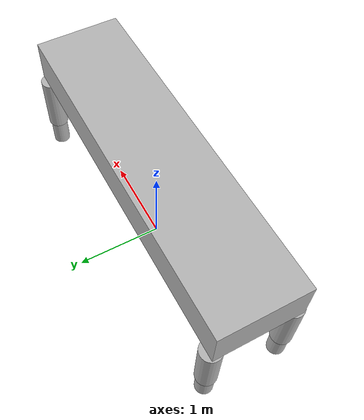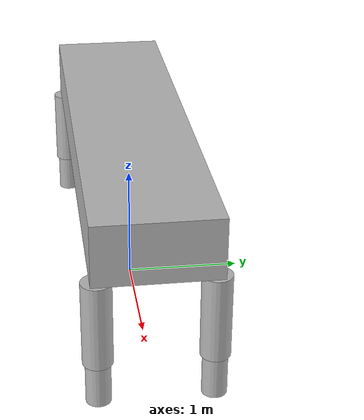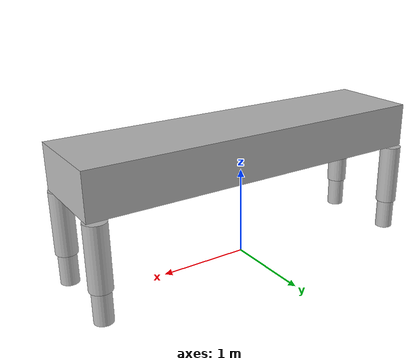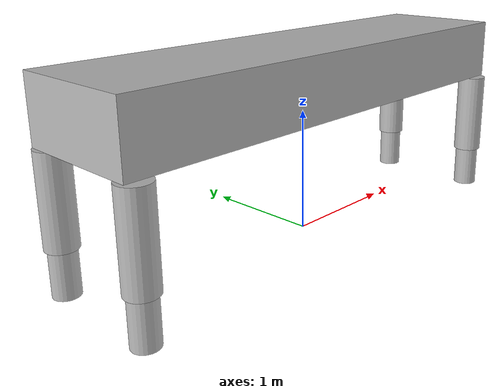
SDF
<?xml version='1.0'?>
<sdf version='1.4'>
  <model name="lessjoints">
    <static>false</static>
    <self_collide>1</self_collide>
      <link name='body'>
        <pose>0 0 1.31 0 0 0</pose>
        <inertial>
          <mass>20</mass>
        </inertial>
        <collision name='collision'>
          <pose frame=''>0 0 0 0 0 0</pose>
          <geometry>
            <box>
              <size>4 1 .5</size>
            </box>
          </geometry>
        </collision>
          <visual name='visual'>
          <pose>0 0 0 0 0 0</pose>
          <geometry>
            <box>
              <size>4 1 .5</size>
            </box>
          </geometry>
        </visual>
      </link>

      <!-- front left leg -->
      <include>
        <uri>model://NewLeg</uri>
        <pose> 1.9 .45 0 0 0 0</pose>
        <name>fl_leg</name>
      </include>
      <joint name="body_to_fl_leg" type="revolute">
        <child>fl_leg::r_thigh_lift</child>
        <parent>body</parent>
        <pose frame=''>0 0 0.35 0 0 0</pose>
        <axis>
          <xyz>0 1 0</xyz>
          <limit>
          <lower>-1.57</lower>
          <upper>1.57</upper>
        </limit>
        </axis>
      </joint>

      <!-- front right leg -->
      <include>
        <uri>model://NewLeg</uri>
        <pose> 1.9 -.45 0 0 0 0</pose>
        <name>fr_leg</name>
      </include>
      <joint name="body_to_fr_leg" type="revolute">
        <child>fr_leg::r_thigh_lift</child>
        <parent>body</parent>
        <pose frame=''>0 0 0.35 0 0 0</pose>
        <axis>
          <xyz>0 1 0</xyz>
          <dynamics>
          </dynamics>
          <limit>
          <lower>-1.57</lower>
          <upper>1.57</upper>
        </limit>
        </axis>
      </joint>

      <!-- middle left leg -->

      <!-- middle right leg -->

      <!-- rear left leg -->
      <include>
        <uri>model://NewLeg</uri>
        <pose>-1.9 0.45 0 0 0 0</pose>
        <name>rl_leg</name>
      </include>
      <joint name="body_to_rl_leg" type="revolute">
        <child>rl_leg::r_thigh_lift</child>
        <parent>body</parent>
        <pose frame=''>0 0 0.35 0 0 0</pose>
        <axis>
          <xyz>0 1 0</xyz>
          <limit>
          <lower>-1.57</lower>
          <upper>1.57</upper>
        </limit>
        </axis>
      </joint>

      <!-- rear right leg -->
      <include>
        <uri>model://NewLeg</uri>
        <pose>-1.9 -0.45 0 0 0 0</pose>
        <name>rr_leg</name>
      </include>
      <joint name="body_to_rr_leg" type="revolute">
        <child>rr_leg::r_thigh_lift</child>
        <parent>body</parent>
        <pose frame=''>0 0 0.35 0 0 0</pose>
        <axis>
          <xyz>0 1 0</xyz>
          <limit>
          <lower>-1.57</lower>
          <upper>1.57</upper>
        </limit>
        </axis>
      </joint>
      <self_collide>1</self_collide>
    </model>
</sdf>

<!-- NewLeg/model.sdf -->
<sdf version='1.6'>
  <model name='leg1'>
    <link name='r_calf'>
      <pose frame=''>0 0 0.2 0 0 0</pose>
      <inertial>
        <mass>.25</mass>
      </inertial>
      <gravity>1</gravity>
      <kinematic>0</kinematic>

      <self_collide>1</self_collide>
      <visual name='r_calf_geom_visual'>
        <pose frame=''>0 0 0 0 0 0</pose>
        <geometry>
          <cylinder>
            <radius>0.1</radius>
            <length>0.4 </length>
          </cylinder>
        </geometry>
      </visual>
      <collision name='r_calf_geom'>
        <pose frame=''>0 0 0 0 0 0</pose>
        <geometry>
          <cylinder>
            <radius>0.1</radius>
            <length>0.4</length>
          </cylinder>
        </geometry>
      </collision>
    </link>

    <link name='r_thigh_lift'>
      <pose frame=''>0 0 0.7 0 0 0</pose>
      <inertial>
        <mass>.54</mass>
      </inertial>
      <gravity>1</gravity>
      <kinematic>0</kinematic>

      <self_collide>1</self_collide>

      <visual name='r_thigh_lift_geom_visual'>
        <pose frame=''>0 0 0 0 -0 0</pose>
        <geometry>
          <cylinder>
            <radius>0.12</radius>
            <length>0.7</length>
          </cylinder>
        </geometry>
      </visual>
      <collision name='r_thigh_lift_geom'>
        <pose frame=''>0 0 0 0 0 0</pose>
        <geometry>
          <cylinder>
            <radius>0.12</radius>
            <length>0.7</length>
          </cylinder>
        </geometry>
      </collision>
    </link>

    <joint name='r_calf_joint' type='revolute'>
      <parent>r_thigh_lift</parent>
      <child>r_calf</child>
      <pose frame=''>0 0 0.2 0 0 0</pose>
      <axis>
        <xyz>0 1 0</xyz>
        <use_parent_model_frame>1</use_parent_model_frame>
        <limit>
          <lower>0</lower>
          <upper>0</upper>
        </limit>
        <dynamics>
        </dynamics>
      </axis>
    </joint>

    <static>0</static>
    <allow_auto_disable>1</allow_auto_disable>

  </model>
</sdf>
